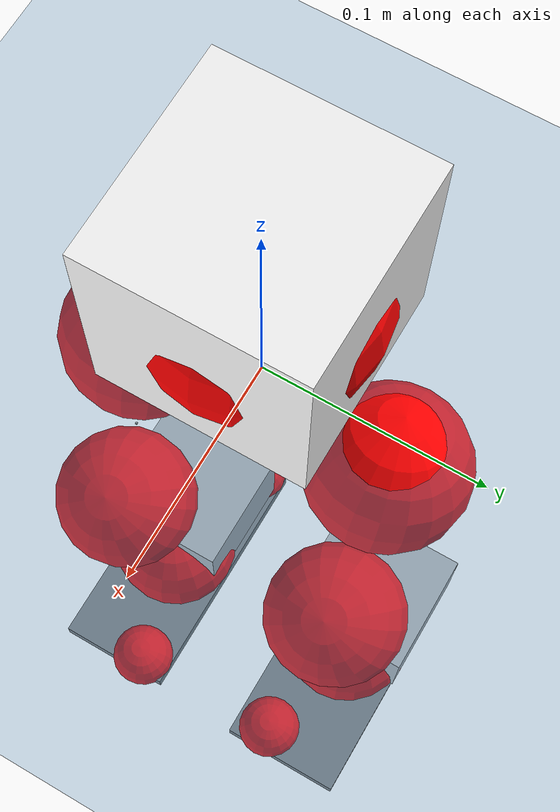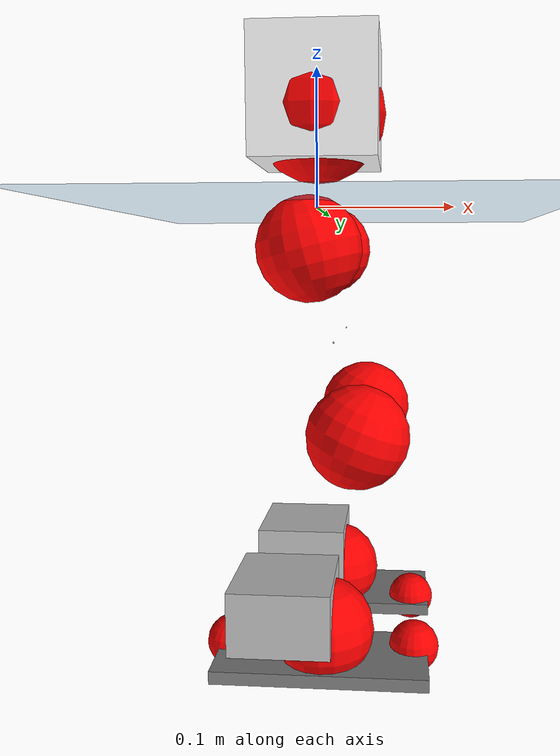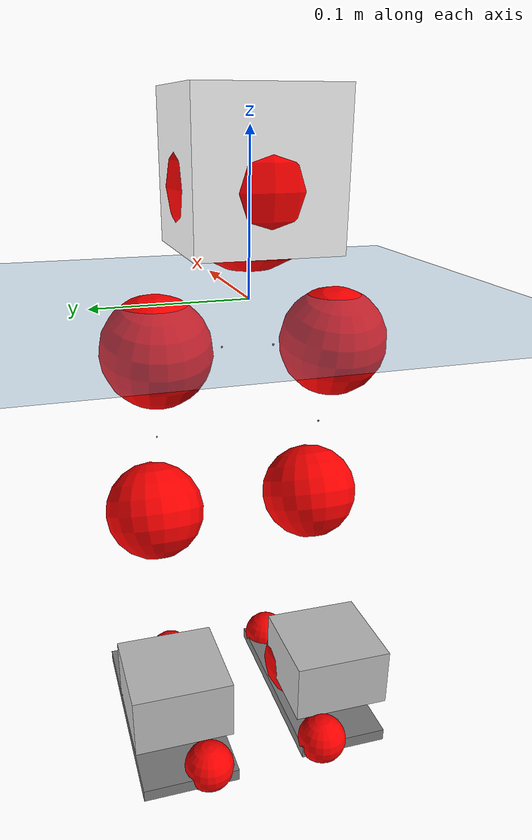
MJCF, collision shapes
<mujoco model="pi_12dof_release_v1">
  <compiler angle="radian" assetdir="assets" balanceinertia="true" inertiafromgeom="false"/>

  <option timestep="0.005" density="1.2" viscosity="2e-05"/>

  <size nkey="1"/>

  <visual>
    <quality shadowsize="8192"/>
    <map shadowclip="0.5"/>
  </visual>

  <default>
    <default class="/">
      <joint armature="0.01" damping="0.01" frictionloss="0.01"/>
      <geom contype="0" conaffinity="0" group="1" solref="-1000 -80"/>
      <site size="0.01 0.005 0.005" group="5"/>
      <general forcelimited="true" biastype="affine" gainprm="20" biasprm="0 -20 -0.5"/>
      <default class="foot">
        <geom size="0.0845 0.036 0.005" type="box" condim="6" group="4" priority="1" friction="0.9 0.2 0.2" solimp="0.015 1 0.005"/>
      </default>
      <default class="reward_collision_sphere">
        <geom group="5" rgba="1 0 0 1"/>
      </default>
    </default>
  </default>

  <asset>
    <texture type="skybox" colorspace="auto" name="//unnamed_texture_0" builtin="gradient" rgb1="0.95 0.95 0.95" rgb2="0.95 0.95 0.95" width="100" height="600"/>
    <texture type="2d" colorspace="auto" name="texplane" builtin="checker" rgb1="0.345 0.575 0.748" rgb2="0.345 0.575 0.748" markrgb="1 1 1" width="512" height="512"/>
    <material name="MatPlane" class="/" texture="texplane" texuniform="true" texrepeat="2 2" specular="0.9"/>
    <mesh name="baselink_1" class="/" file="baselink_1.STL"/>
    <mesh name="r_hip_pitch_link" class="/" file="r_hip_pitch_link.STL"/>
    <mesh name="r_hip_roll_link" class="/" file="r_hip_roll_link.STL"/>
    <mesh name="r_thigh_link" class="/" file="r_thigh_link.STL"/>
    <mesh name="r_calf_link" class="/" file="r_calf_link.STL"/>
    <mesh name="r_ankle_pitch_link" class="/" file="r_ankle_pitch_link.STL"/>
    <mesh name="r_ankle_roll_link" class="/" file="r_ankle_roll_link.STL"/>
    <mesh name="l_hip_pitch_link" class="/" file="l_hip_pitch_link.STL"/>
    <mesh name="l_hip_roll_link" class="/" file="l_hip_roll_link.STL"/>
    <mesh name="l_thigh_link" class="/" file="l_thigh_link.STL"/>
    <mesh name="l_calf_link" class="/" file="l_calf_link.STL"/>
    <mesh name="l_ankle_pitch_link" class="/" file="l_ankle_pitch_link.STL"/>
    <mesh name="l_ankle_roll_link" class="/" file="l_ankle_roll_link.STL"/>
  </asset>

  <worldbody>
    <geom name="floor" class="/" size="100 100 0.125" type="plane" group="0" material="MatPlane"/>
    <light name="toplight_shadow" class="/" pos="0 0 5" dir="0.0990148 0.0990148 -0.990148" type="directional" ambient="0.04 0.04 0.04" diffuse="0.55 0.55 0.55" specular="0.12 0.12 0.12"/>
    <light name="toplight_fill" class="/" pos="0 0 5" dir="0.0990148 0.0990148 -0.990148" type="directional" castshadow="false" ambient="0.04 0.04 0.04" diffuse="0.3 0.3 0.3" specular="0.08 0.08 0.08"/>
    <body name="trunk" pos="0.00090329 0.000292357 0.000758296" quat="1 -3.13769e-05 8.07706e-05 -0.000163419">
      <inertial pos="0.00156246 -0.00112839 0.0377097" quat="0.694499 0.00839984 0.0111072 0.719358" mass="1.5155" diaginertia="0.00922399 0.00218664 0.00301581"/>
      <joint name="//unnamed_joint_0" type="free"/>
      <geom name="//unnamed_geom_1" class="/" type="mesh" density="0" rgba="1 1 1 1" mesh="baselink_1"/>
      <geom name="//unnamed_geom_2" class="/" size="0.0447214 0.0447214 0.0447214" pos="0 0 0.0751505" type="box" rgba="1 1 1 1"/>
      <geom name="//unnamed_geom_3" class="reward_collision_sphere" size="0.0491935" pos="0 0 0.0657567"/>
      <site name="imu" class="/" pos="0.00115031 -0.00443801 0.00101149" size="0.00894428"/>
      <camera name="track" class="/" pos="0 -1.50862 0" quat="0.707107 0.707107 0 0" mode="trackcom"/>
      <camera name="ego_camera" class="/" pos="0.0742193 0 0.169089" quat="-0.5 -0.5 0.5 0.5"/>
      <body name="r_hip_pitch_link" pos="0.000174677 -0.0172394 -0.0316003" quat="0.992173 0.000340018 -0.124867 -6.72592e-05">
        <inertial pos="0.00151273 -0.0419371 0.000265322" quat="-0.0193808 0.70585 -0.0283182 0.70753" mass="0.268832" diaginertia="0.000104839 2.38296e-05 6.07445e-05"/>
        <joint name="r_hip_pitch_joint" class="/" pos="0 0 0" axis="-4.04442e-05 -0.999999 0.00137153" stiffness="0.00345674" range="-1.73163 1.25623" armature="0.00888579" damping="0.0121604" frictionloss="0.00866902"/>
        <geom name="//unnamed_geom_4" class="/" type="mesh" density="0" rgba="0.75294 0.75294 0.75294 1" mesh="r_hip_pitch_link"/>
        <geom name="//unnamed_geom_5" class="/" size="0.000447214 0.000447214 0.000447214" type="box" rgba="0.75294 0.75294 0.75294 1"/>
        <body name="r_hip_roll_link" pos="-0.000830312 -0.0412643 -0.000437979" quat="1 0.00013924 -8.42531e-05 9.88629e-05">
          <inertial pos="-0.00168414 0.000562839 -0.0583433" quat="0.705962 -0.0789792 -0.0825664 0.698973" mass="0.281328" diaginertia="0.000316504 6.82339e-05 9.59527e-05"/>
          <joint name="r_hip_roll_joint" class="/" pos="0 0 0" axis="-0.999995 -0.00165154 -0.00250633" range="-0.12728 0.510672" armature="0.0091766" damping="0.00111734" frictionloss="0.00884067"/>
          <geom name="//unnamed_geom_6" class="/" type="mesh" density="0" rgba="0.75294 0.75294 0.75294 1" mesh="r_hip_roll_link"/>
          <geom name="//unnamed_geom_7" class="/" size="0.000447214 0.000447214 0.000447214" type="box" rgba="0.75294 0.75294 0.75294 1"/>
          <geom name="//unnamed_geom_8" class="reward_collision_sphere" size="0.0357771"/>
          <body name="r_thigh_link" pos="0.000204084 0.000745685 -0.0646787" quat="1 0.000257966 6.9032e-05 -0.000301116">
            <inertial pos="0.000804299 0.000513009 -0.0454799" quat="0.738549 0.674199 -0.00101279 -5.24983e-05" mass="0.080714" diaginertia="0.00012146 2.31628e-05 4.29659e-05"/>
            <joint name="r_thigh_joint" class="/" pos="0 0 0" axis="0.000245898 0.000582588 -1" range="-0.2933 0.576444" armature="0.00929877" damping="0.00493194" frictionloss="0.00852697"/>
            <geom name="//unnamed_geom_9" class="/" type="mesh" density="0" rgba="0.75294 0.75294 0.75294 1" mesh="r_thigh_link"/>
            <geom name="//unnamed_geom_10" class="/" size="0.000447214 0.000447214 0.000447214" type="box" rgba="0.75294 0.75294 0.75294 1"/>
            <body name="r_calf_link" pos="0.000214041 -0.0017937 -0.0663744" quat="0.947597 -0.000117422 0.319468 -0.000119346">
              <inertial pos="-0.00105078 -0.000578447 -0.0659126" quat="0.999986 -0.00206783 0.000375113 0.00487301" mass="0.583824" diaginertia="0.00340357 0.000864673 0.00013048"/>
              <joint name="r_calf_joint" class="/" pos="0 0 0" axis="-0.0028359 -0.999992 -0.00287384" range="-1.63644 0.647966" armature="0.00882068" damping="0.0102093" frictionloss="0.008701"/>
              <geom name="//unnamed_geom_11" class="/" type="mesh" density="0" rgba="0.75294 0.75294 0.75294 1" mesh="r_calf_link"/>
              <geom name="//unnamed_geom_12" class="/" size="0.000447214 0.000447214 0.000447214" type="box" rgba="0.75294 0.75294 0.75294 1"/>
              <geom name="//unnamed_geom_13" class="reward_collision_sphere" size="0.0357771"/>
              <body name="r_ankle_pitch_link" pos="0.000527178 0.000479708 -0.131276" quat="0.980065 -4.87084e-06 -0.198675 -4.8065e-06">
                <inertial pos="0.00394419 0.00326342 -0.000210606" quat="-0.000457318 0.706752 0.000959011 0.70746" mass="0.125732" diaginertia="0.000295463 5.47343e-05 8.82529e-05"/>
                <joint name="r_ankle_pitch_joint" class="/" pos="0 0 0" axis="0.000255849 -1 0.00084721" range="-1.31185 0.50305" armature="0.00881651" damping="0.00941744" frictionloss="0.00854229"/>
                <geom name="//unnamed_geom_14" class="/" type="mesh" density="0" rgba="0.75294 0.75294 0.75294 1" mesh="r_ankle_pitch_link"/>
                <geom name="//unnamed_geom_15" class="/" size="0.0348827 0.0357771 0.0223607" type="box" rgba="0.75294 0.75294 0.75294 1"/>
                <body name="r_ankle_roll_link" pos="0.0760533 0.00369059 0.000155232" quat="1 -5.92136e-05 6.03754e-06 4.33136e-05">
                  <inertial pos="-0.0238175 -0.000208271 -0.013569" quat="0.559456 0.43055 0.434275 0.559501" mass="0.371965" diaginertia="0.00107243 0.000251739 0.000208793"/>
                  <joint name="r_ankle_roll_joint" class="/" pos="0 0 0" axis="-0.99999 -0.00215603 -0.0040366" range="-0.158436 0.14402" armature="0.0090042" damping="0.00298315" frictionloss="0.00889863"/>
                  <geom name="//unnamed_geom_16" class="/" type="mesh" density="0" rgba="0.75294 0.75294 0.75294 1" mesh="r_ankle_roll_link"/>
                  <geom name="//unnamed_geom_17" class="/" type="mesh" rgba="0.75294 0.75294 0.75294 1" mesh="r_ankle_roll_link"/>
                  <geom name="right_foot" class="foot" size="0.0746674 0.0323501 0.00453667" pos="-0.0504691 0 -0.0413328"/>
                  <geom name="//unnamed_geom_19" class="reward_collision_sphere" size="0.0357771" pos="-0.0494795 0 -0.0187876"/>
                  <geom name="//unnamed_geom_20" class="reward_collision_sphere" size="0.0178886" pos="0.0148439 0.0150862 -0.0375753"/>
                  <geom name="//unnamed_geom_21" class="reward_collision_sphere" size="0.0178886" pos="-0.118751 0.0150862 -0.0375753"/>
                  <site name="right_foot" class="foot" pos="-0.0504691 0 -0.0413328" size="0.00894428"/>
                </body>
              </body>
            </body>
          </body>
        </body>
      </body>
      <body name="l_hip_pitch_link" pos="6.13696e-05 0.0175938 -0.0303204" quat="0.992186 -6.19273e-05 -0.124764 1.0045e-05">
        <inertial pos="0.000539503 0.040975 0.000559648" quat="-0.0384283 0.708679 0.0321688 0.703749" mass="0.282178" diaginertia="0.000122269 2.58111e-05 7.43463e-05"/>
        <joint name="l_hip_pitch_joint" class="/" pos="0 0 0" axis="0.000890024 0.999998 -0.00196514" range="-1.25298 1.75198" armature="0.0089025" damping="0.00792851" frictionloss="0.00892053"/>
        <geom name="//unnamed_geom_22" class="/" type="mesh" density="0" rgba="0.75294 0.75294 0.75294 1" mesh="l_hip_pitch_link"/>
        <geom name="//unnamed_geom_23" class="/" size="0.000447214 0.000447214 0.000447214" type="box" rgba="0.75294 0.75294 0.75294 1"/>
        <body name="l_hip_roll_link" pos="9.74883e-05 0.0422347 0.000103846" quat="1 6.33329e-05 7.44329e-06 -3.7619e-05">
          <inertial pos="-0.0011377 -0.000196482 -0.0571475" quat="0.699779 -0.0747063 -0.078723 0.706068" mass="0.280982" diaginertia="0.000316336 6.83791e-05 9.3329e-05"/>
          <joint name="l_hip_roll_joint" class="/" pos="0 0 0" axis="-1 -0.000159639 0.000313707" range="-0.503385 0.107528" armature="0.00905687" damping="0.00501903" frictionloss="0.00903082"/>
          <geom name="//unnamed_geom_24" class="/" type="mesh" density="0" rgba="0.75294 0.75294 0.75294 1" mesh="l_hip_roll_link"/>
          <geom name="//unnamed_geom_25" class="/" size="0.000447214 0.000447214 0.000447214" type="box" rgba="0.75294 0.75294 0.75294 1"/>
          <geom name="//unnamed_geom_26" class="reward_collision_sphere" size="0.0357771"/>
          <body name="l_thigh_link" pos="0.000130639 -0.00056425 -0.0658207" quat="1 5.928e-05 0.000223472 -0.000103739">
            <inertial pos="0.000517525 -0.000760269 -0.0447535" quat="0.674018 0.738704 -0.00366826 -0.00142032" mass="0.080525" diaginertia="0.000119757 2.29983e-05 4.18842e-05"/>
            <joint name="l_thigh_joint" class="/" pos="0 0 0" axis="0.00106028 0.00165973 -0.999998" range="-0.604361 0.28236" armature="0.00859952" damping="0.00126916" frictionloss="0.00855689"/>
            <geom name="//unnamed_geom_27" class="/" type="mesh" density="0" rgba="0.75294 0.75294 0.75294 1" mesh="l_thigh_link"/>
            <geom name="//unnamed_geom_28" class="/" size="0.000447214 0.000447214 0.000447214" type="box" rgba="0.75294 0.75294 0.75294 1"/>
            <body name="l_calf_link" pos="-0.000235543 0.00123656 -0.0665364" quat="0.947642 -7.03949e-05 0.319333 0.000315711">
              <inertial pos="0.000942407 0.00154784 -0.0668397" quat="0.999958 0.00582165 0.000932084 0.00701296" mass="0.581174" diaginertia="0.00333168 0.000855105 0.000127883"/>
              <joint name="l_calf_joint" class="/" pos="0 0 0" axis="0.00395019 0.999992 -0.00091292" stiffness="0.00298742" range="-0.655362 1.67045" armature="0.00901152" damping="0.00596789" frictionloss="0.00900925"/>
              <geom name="//unnamed_geom_29" class="/" type="mesh" density="0" rgba="0.75294 0.75294 0.75294 1" mesh="l_calf_link"/>
              <geom name="//unnamed_geom_30" class="/" size="0.000447214 0.000447214 0.000447214" type="box" rgba="0.75294 0.75294 0.75294 1"/>
              <geom name="//unnamed_geom_31" class="reward_collision_sphere" size="0.0357771"/>
              <body name="l_ankle_pitch_link" pos="0.000473141 0.00101861 -0.132425" quat="0.980071 1.9999e-05 -0.198649 4.24832e-05">
                <inertial pos="0.00450297 -0.000867129 -2.38024e-05" quat="-0.0014261 0.70736 0.00178905 0.706849" mass="0.125962" diaginertia="0.000290219 5.35614e-05 8.74158e-05"/>
                <joint name="l_ankle_pitch_joint" class="/" pos="0 0 0" axis="0.000693118 1 -0.000179919" stiffness="0.00129239" range="-0.503729 1.30246" armature="0.00897576" damping="0.00793752" frictionloss="0.00865061"/>
                <geom name="//unnamed_geom_32" class="/" type="mesh" density="0" rgba="0.75294 0.75294 0.75294 1" mesh="l_ankle_pitch_link"/>
                <geom name="//unnamed_geom_33" class="/" size="0.0348827 0.0357771 0.0223607" type="box" rgba="0.75294 0.75294 0.75294 1"/>
                <body name="l_ankle_roll_link" pos="0.0752711 0.000168313 -0.000723305" quat="1 -5.22908e-05 -5.00755e-05 5.64052e-05">
                  <inertial pos="-0.0238942 -0.000665343 -0.0134808" quat="0.556619 0.431735 0.436924 0.559355" mass="0.372703" diaginertia="0.0010699 0.000252176 0.000206571"/>
                  <joint name="l_ankle_roll_joint" class="/" pos="0 0 0" axis="-0.999998 0.000604586 -0.00193026" range="-0.154194 0.137364" armature="0.0090218" damping="0.00439954" frictionloss="0.00916034"/>
                  <geom name="//unnamed_geom_34" class="/" type="mesh" density="0" rgba="0.75294 0.75294 0.75294 1" mesh="l_ankle_roll_link"/>
                  <geom name="//unnamed_geom_35" class="/" type="mesh" rgba="0.75294 0.75294 0.75294 1" mesh="l_ankle_roll_link"/>
                  <geom name="left_foot" class="foot" size="0.0790683 0.0342681 0.00442193" pos="-0.0504691 0 -0.0413328"/>
                  <geom name="//unnamed_geom_37" class="reward_collision_sphere" size="0.0357771" pos="-0.0494795 0 -0.0187876"/>
                  <geom name="//unnamed_geom_38" class="reward_collision_sphere" size="0.0178886" pos="0.0148439 -0.0150862 -0.0375753"/>
                  <geom name="//unnamed_geom_39" class="reward_collision_sphere" size="0.0178886" pos="-0.118751 -0.0150862 -0.0375753"/>
                  <site name="left_foot" class="foot" pos="-0.0504691 0 -0.0413328" size="0.00894428"/>
                </body>
              </body>
            </body>
          </body>
        </body>
      </body>
    </body>
  </worldbody>

  <contact>
    <pair class="/" geom1="floor" geom2="right_foot" name="//unnamed_contact_1"/>
    <pair class="/" geom1="floor" geom2="left_foot" name="//unnamed_contact_0"/>
  </contact>

  <actuator>
    <general name="r_hip_pitch_joint" class="/" joint="r_hip_pitch_joint" forcerange="-18.7164 18.7164" gainprm="17.8413" biasprm="0 -17.8413 -0.436996"/>
    <general name="r_hip_roll_joint" class="/" joint="r_hip_roll_joint" forcerange="-18.1649 18.1649" gainprm="17.8413" biasprm="0 -17.8413 -0.436996"/>
    <general name="r_thigh_joint" class="/" joint="r_thigh_joint" forcerange="-18.5472 18.5472" gainprm="17.8413" biasprm="0 -17.8413 -0.436996"/>
    <general name="r_calf_joint" class="/" joint="r_calf_joint" forcerange="-19.306 19.306" gainprm="17.8413" biasprm="0 -17.8413 -0.436996"/>
    <general name="r_ankle_pitch_joint" class="/" joint="r_ankle_pitch_joint" forcerange="-19.1062 19.1062" gainprm="17.8413" biasprm="0 -17.8413 -0.436996"/>
    <general name="r_ankle_roll_joint" class="/" joint="r_ankle_roll_joint" forcerange="-18.5958 18.5958" gainprm="17.8413" biasprm="0 -17.8413 -0.436996"/>
    <general name="l_hip_pitch_joint" class="/" joint="l_hip_pitch_joint" forcerange="-18.8569 18.8569" gainprm="17.8413" biasprm="0 -17.8413 -0.436996"/>
    <general name="l_hip_roll_joint" class="/" joint="l_hip_roll_joint" forcerange="-19.3986 19.3986" gainprm="17.8413" biasprm="0 -17.8413 -0.436996"/>
    <general name="l_thigh_joint" class="/" joint="l_thigh_joint" forcerange="-18.6814 18.6814" gainprm="17.8413" biasprm="0 -17.8413 -0.436996"/>
    <general name="l_calf_joint" class="/" joint="l_calf_joint" forcerange="-18.853 18.853" gainprm="17.8413" biasprm="0 -17.8413 -0.436996"/>
    <general name="l_ankle_pitch_joint" class="/" joint="l_ankle_pitch_joint" forcerange="-18.1689 18.1689" gainprm="17.8413" biasprm="0 -17.8413 -0.436996"/>
    <general name="l_ankle_roll_joint" class="/" joint="l_ankle_roll_joint" forcerange="-18.6288 18.6288" gainprm="17.8413" biasprm="0 -17.8413 -0.436996"/>
  </actuator>

  <sensor>
    <gyro site="imu" name="imu_angular_velocity"/>
    <velocimeter site="imu" name="imu_linear_velocity"/>
    <framelinvel objtype="site" objname="left_foot" name="left_foot_global_linear_velocity"/>
    <framelinvel objtype="site" objname="right_foot" name="right_foot_global_linear_velocity"/>
  </sensor>

  <keyframe>
    <key name="home" qpos="0 0 0.291 1 0 0 0 0.4 0 0 -0.8 0.4 0 -0.4 0 0 0.8 -0.4 0"/>
  </keyframe>
</mujoco>
